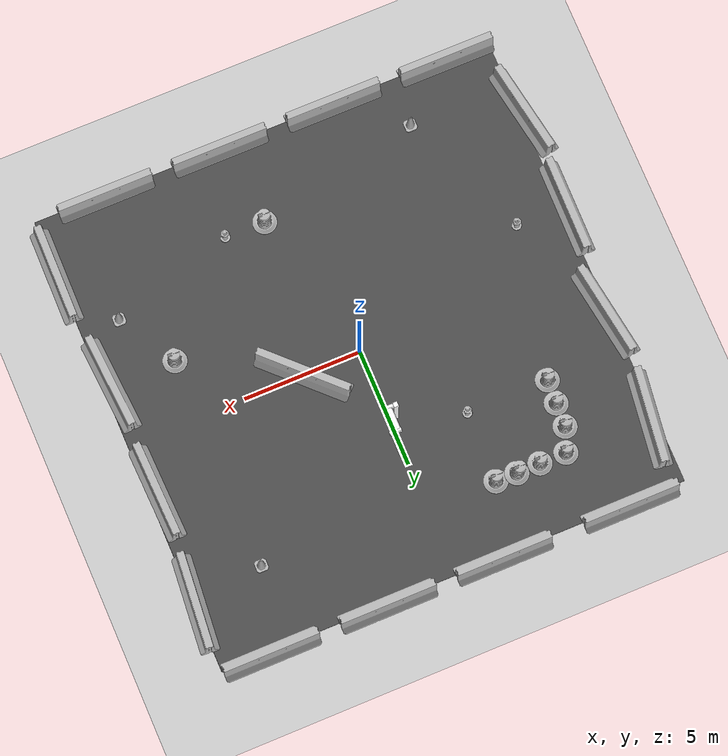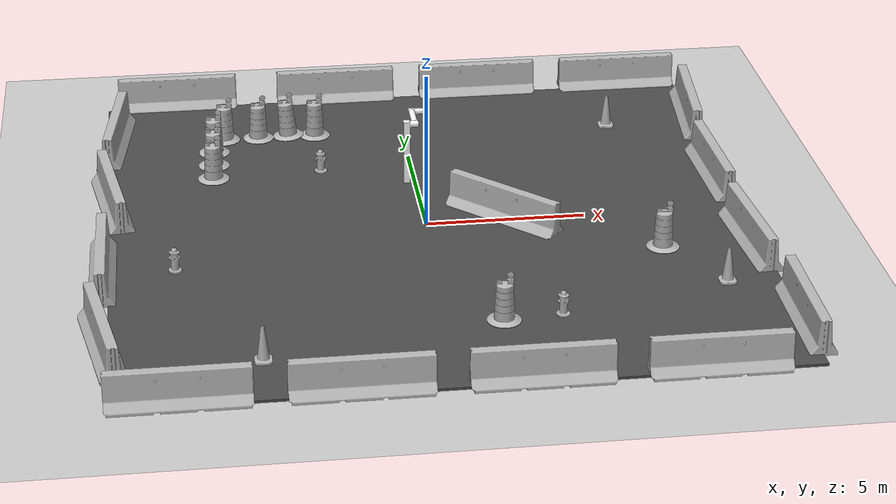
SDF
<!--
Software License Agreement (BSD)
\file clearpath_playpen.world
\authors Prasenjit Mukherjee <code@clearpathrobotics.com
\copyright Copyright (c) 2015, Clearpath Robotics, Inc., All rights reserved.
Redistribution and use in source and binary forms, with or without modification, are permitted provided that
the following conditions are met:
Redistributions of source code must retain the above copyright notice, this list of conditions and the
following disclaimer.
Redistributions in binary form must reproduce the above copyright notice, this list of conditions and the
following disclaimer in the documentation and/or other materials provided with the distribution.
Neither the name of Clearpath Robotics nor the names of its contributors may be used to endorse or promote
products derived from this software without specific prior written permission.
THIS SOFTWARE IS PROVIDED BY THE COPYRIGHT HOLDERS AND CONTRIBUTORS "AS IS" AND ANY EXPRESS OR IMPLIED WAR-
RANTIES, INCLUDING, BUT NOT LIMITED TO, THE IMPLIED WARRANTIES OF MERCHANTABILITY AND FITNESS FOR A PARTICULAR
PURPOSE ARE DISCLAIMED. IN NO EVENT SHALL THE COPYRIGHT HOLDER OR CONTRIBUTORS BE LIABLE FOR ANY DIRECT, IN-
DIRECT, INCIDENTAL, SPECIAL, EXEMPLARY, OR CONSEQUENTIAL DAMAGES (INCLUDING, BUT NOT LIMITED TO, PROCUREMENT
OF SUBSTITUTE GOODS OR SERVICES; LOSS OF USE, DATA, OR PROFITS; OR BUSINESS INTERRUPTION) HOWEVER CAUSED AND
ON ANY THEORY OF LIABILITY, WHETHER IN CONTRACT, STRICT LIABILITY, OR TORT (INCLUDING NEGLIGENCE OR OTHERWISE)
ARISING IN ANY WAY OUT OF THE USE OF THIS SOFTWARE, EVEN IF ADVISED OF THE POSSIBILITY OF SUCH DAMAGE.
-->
<sdf version="1.4">
 <world name="default">
  <light name="sun" type="directional">
   <pose>0 0 10 0 -0 0</pose>
   <diffuse>0.8 0.8 0.8 1</diffuse>
   <specular>0.2 0.2 0.2 1</specular>
   <attenuation>
    <range>1000</range>
    <constant>0.9</constant>
    <linear>0.01</linear>
    <quadratic>0.001</quadratic>
   </attenuation>
   <direction>-0.5 0.1 -0.9</direction>
  </light>
  <model name="ground_plane">
   <static>1</static>
   <link name="link">
    <collision name="collision">
     <geometry><plane><normal>0 0 1</normal><size>100 100</size></plane></geometry>
     <surface><friction><ode><mu>100</mu><mu2>50</mu2></ode></friction></surface>
    </collision>
    <visual name="visual">
     <cast_shadows>0</cast_shadows>
     <geometry><plane><normal>0 0 1</normal><size>100 100</size></plane></geometry>
     <material>
      <script><uri>file://media/materials/scripts/gazebo.material</uri><name>Gazebo/Grey</name></script>
     </material>
    </visual>
    <velocity_decay><linear>0</linear><angular>0</angular></velocity_decay>
   </link>
  </model>
  <physics type="ode">
   <max_step_size>0.01</max_step_size>
   <real_time_factor>1</real_time_factor>
   <real_time_update_rate>100</real_time_update_rate>
   <gravity>0 0 -9.8</gravity>
  </physics>
  <scene><ambient>0.4 0.4 0.4 1</ambient><background>0.7 0.7 0.7 1</background><shadows>1</shadows></scene>
  <model name="jersey_barrier">
   <static>1</static>
   <link name="link">
    <visual name="visual">
     <geometry><mesh><uri>model://jersey_barrier/meshes/jersey_barrier.dae</uri></mesh></geometry>
    </visual>
    <collision name="upright">
     <pose>0 0 0.5715 0 -0 0</pose>
     <geometry><box><size>4.06542 0.3063 1.143</size></box></geometry>
    </collision>
    <collision name="base">
     <pose>0 0 0.032258 0 -0 0</pose>
     <geometry><box><size>4.06542 0.8107 0.064516</size></box></geometry>
    </collision>
    <collision name="base2">
     <pose>0 0 0.1 0 -0 0</pose>
     <geometry><box><size>4.06542 0.65 0.1</size></box></geometry>
    </collision>
    <collision name="base3">
     <pose>0 0 0.2 0 -0 0</pose>
     <geometry><box><size>4.06542 0.5 0.1</size></box></geometry>
    </collision>
    <collision name="left-angle">
     <pose>0 -0.224 0.2401 0.9 -0 0</pose>
     <geometry><box><size>4.06542 0.5 0.064516</size></box></geometry>
    </collision>
    <collision name="right-angle">
     <pose>0 0.224 0.2401 -0.9 0 0</pose>
     <geometry><box><size>4.06542 0.5 0.064516</size></box></geometry>
    </collision>
    <velocity_decay><linear>0</linear><angular>0</angular></velocity_decay>
   </link>
   <pose>-8 -10 0 0 -0 0</pose>
  </model>
  <model name="jersey_barrier_0">
   <static>1</static>
   <link name="link">
    <visual name="visual">
     <geometry><mesh><uri>model://jersey_barrier/meshes/jersey_barrier.dae</uri></mesh></geometry>
    </visual>
    <collision name="upright">
     <pose>0 0 0.5715 0 -0 0</pose>
     <geometry><box><size>4.06542 0.3063 1.143</size></box></geometry>
    </collision>
    <collision name="base">
     <pose>0 0 0.032258 0 -0 0</pose>
     <geometry><box><size>4.06542 0.8107 0.064516</size></box></geometry>
    </collision>
    <collision name="base2">
     <pose>0 0 0.1 0 -0 0</pose>
     <geometry><box><size>4.06542 0.65 0.1</size></box></geometry>
    </collision>
    <collision name="base3">
     <pose>0 0 0.2 0 -0 0</pose>
     <geometry><box><size>4.06542 0.5 0.1</size></box></geometry>
    </collision>
    <collision name="left-angle">
     <pose>0 -0.224 0.2401 0.9 -0 0</pose>
     <geometry><box><size>4.06542 0.5 0.064516</size></box></geometry>
    </collision>
    <collision name="right-angle">
     <pose>0 0.224 0.2401 -0.9 0 0</pose>
     <geometry><box><size>4.06542 0.5 0.064516</size></box></geometry>
    </collision>
    <velocity_decay><linear>0</linear><angular>0</angular></velocity_decay>
   </link>
   <pose>-3 -10 0 0 -0 0</pose>
  </model>
  <model name="jersey_barrier_1">
   <static>1</static>
   <link name="link">
    <visual name="visual">
     <geometry><mesh><uri>model://jersey_barrier/meshes/jersey_barrier.dae</uri></mesh></geometry>
    </visual>
    <collision name="upright">
     <pose>0 0 0.5715 0 -0 0</pose>
     <geometry><box><size>4.06542 0.3063 1.143</size></box></geometry>
    </collision>
    <collision name="base">
     <pose>0 0 0.032258 0 -0 0</pose>
     <geometry><box><size>4.06542 0.8107 0.064516</size></box></geometry>
    </collision>
    <collision name="base2">
     <pose>0 0 0.1 0 -0 0</pose>
     <geometry><box><size>4.06542 0.65 0.1</size></box></geometry>
    </collision>
    <collision name="base3">
     <pose>0 0 0.2 0 -0 0</pose>
     <geometry><box><size>4.06542 0.5 0.1</size></box></geometry>
    </collision>
    <collision name="left-angle">
     <pose>0 -0.224 0.2401 0.9 -0 0</pose>
     <geometry><box><size>4.06542 0.5 0.064516</size></box></geometry>
    </collision>
    <collision name="right-angle">
     <pose>0 0.224 0.2401 -0.9 0 0</pose>
     <geometry><box><size>4.06542 0.5 0.064516</size></box></geometry>
    </collision>
    <velocity_decay><linear>0</linear><angular>0</angular></velocity_decay>
   </link>
   <pose>2 -10 0 0 -0 0</pose>
  </model>
  <model name="jersey_barrier_2">
   <static>1</static>
   <link name="link">
    <visual name="visual">
     <geometry><mesh><uri>model://jersey_barrier/meshes/jersey_barrier.dae</uri></mesh></geometry>
    </visual>
    <collision name="upright">
     <pose>0 0 0.5715 0 -0 0</pose>
     <geometry><box><size>4.06542 0.3063 1.143</size></box></geometry>
    </collision>
    <collision name="base">
     <pose>0 0 0.032258 0 -0 0</pose>
     <geometry><box><size>4.06542 0.8107 0.064516</size></box></geometry>
    </collision>
    <collision name="base2">
     <pose>0 0 0.1 0 -0 0</pose>
     <geometry><box><size>4.06542 0.65 0.1</size></box></geometry>
    </collision>
    <collision name="base3">
     <pose>0 0 0.2 0 -0 0</pose>
     <geometry><box><size>4.06542 0.5 0.1</size></box></geometry>
    </collision>
    <collision name="left-angle">
     <pose>0 -0.224 0.2401 0.9 -0 0</pose>
     <geometry><box><size>4.06542 0.5 0.064516</size></box></geometry>
    </collision>
    <collision name="right-angle">
     <pose>0 0.224 0.2401 -0.9 0 0</pose>
     <geometry><box><size>4.06542 0.5 0.064516</size></box></geometry>
    </collision>
    <velocity_decay><linear>0</linear><angular>0</angular></velocity_decay>
   </link>
   <pose>7 -10 0 0 -0 0</pose>
  </model>
  <model name="jersey_barrier_3">
   <static>1</static>
   <link name="link">
    <visual name="visual">
     <geometry><mesh><uri>model://jersey_barrier/meshes/jersey_barrier.dae</uri></mesh></geometry>
    </visual>
    <collision name="upright">
     <pose>0 0 0.5715 0 -0 0</pose>
     <geometry><box><size>4.06542 0.3063 1.143</size></box></geometry>
    </collision>
    <collision name="base">
     <pose>0 0 0.032258 0 -0 0</pose>
     <geometry><box><size>4.06542 0.8107 0.064516</size></box></geometry>
    </collision>
    <collision name="base2">
     <pose>0 0 0.1 0 -0 0</pose>
     <geometry><box><size>4.06542 0.65 0.1</size></box></geometry>
    </collision>
    <collision name="base3">
     <pose>0 0 0.2 0 -0 0</pose>
     <geometry><box><size>4.06542 0.5 0.1</size></box></geometry>
    </collision>
    <collision name="left-angle">
     <pose>0 -0.224 0.2401 0.9 -0 0</pose>
     <geometry><box><size>4.06542 0.5 0.064516</size></box></geometry>
    </collision>
    <collision name="right-angle">
     <pose>0 0.224 0.2401 -0.9 0 0</pose>
     <geometry><box><size>4.06542 0.5 0.064516</size></box></geometry>
    </collision>
    <velocity_decay><linear>0</linear><angular>0</angular></velocity_decay>
   </link>
   <pose>-7.50675 10 0 0 -0 0</pose>
  </model>
  <model name="jersey_barrier_4">
   <static>1</static>
   <link name="link">
    <visual name="visual">
     <geometry><mesh><uri>model://jersey_barrier/meshes/jersey_barrier.dae</uri></mesh></geometry>
    </visual>
    <collision name="upright">
     <pose>0 0 0.5715 0 -0 0</pose>
     <geometry><box><size>4.06542 0.3063 1.143</size></box></geometry>
    </collision>
    <collision name="base">
     <pose>0 0 0.032258 0 -0 0</pose>
     <geometry><box><size>4.06542 0.8107 0.064516</size></box></geometry>
    </collision>
    <collision name="base2">
     <pose>0 0 0.1 0 -0 0</pose>
     <geometry><box><size>4.06542 0.65 0.1</size></box></geometry>
    </collision>
    <collision name="base3">
     <pose>0 0 0.2 0 -0 0</pose>
     <geometry><box><size>4.06542 0.5 0.1</size></box></geometry>
    </collision>
    <collision name="left-angle">
     <pose>0 -0.224 0.2401 0.9 -0 0</pose>
     <geometry><box><size>4.06542 0.5 0.064516</size></box></geometry>
    </collision>
    <collision name="right-angle">
     <pose>0 0.224 0.2401 -0.9 0 0</pose>
     <geometry><box><size>4.06542 0.5 0.064516</size></box></geometry>
    </collision>
    <velocity_decay><linear>0</linear><angular>0</angular></velocity_decay>
   </link>
   <pose>-2 10 0 0 -0 0</pose>
  </model>
  <model name="jersey_barrier_5">
   <static>1</static>
   <link name="link">
    <visual name="visual">
     <geometry><mesh><uri>model://jersey_barrier/meshes/jersey_barrier.dae</uri></mesh></geometry>
    </visual>
    <collision name="upright">
     <pose>0 0 0.5715 0 -0 0</pose>
     <geometry><box><size>4.06542 0.3063 1.143</size></box></geometry>
    </collision>
    <collision name="base">
     <pose>0 0 0.032258 0 -0 0</pose>
     <geometry><box><size>4.06542 0.8107 0.064516</size></box></geometry>
    </collision>
    <collision name="base2">
     <pose>0 0 0.1 0 -0 0</pose>
     <geometry><box><size>4.06542 0.65 0.1</size></box></geometry>
    </collision>
    <collision name="base3">
     <pose>0 0 0.2 0 -0 0</pose>
     <geometry><box><size>4.06542 0.5 0.1</size></box></geometry>
    </collision>
    <collision name="left-angle">
     <pose>0 -0.224 0.2401 0.9 -0 0</pose>
     <geometry><box><size>4.06542 0.5 0.064516</size></box></geometry>
    </collision>
    <collision name="right-angle">
     <pose>0 0.224 0.2401 -0.9 0 0</pose>
     <geometry><box><size>4.06542 0.5 0.064516</size></box></geometry>
    </collision>
    <velocity_decay><linear>0</linear><angular>0</angular></velocity_decay>
   </link>
   <pose>3 10 0 0 -0 0</pose>
  </model>
  <model name="jersey_barrier_6">
   <static>1</static>
   <link name="link">
    <visual name="visual">
     <geometry><mesh><uri>model://jersey_barrier/meshes/jersey_barrier.dae</uri></mesh></geometry>
    </visual>
    <collision name="upright">
     <pose>0 0 0.5715 0 -0 0</pose>
     <geometry><box><size>4.06542 0.3063 1.143</size></box></geometry>
    </collision>
    <collision name="base">
     <pose>0 0 0.032258 0 -0 0</pose>
     <geometry><box><size>4.06542 0.8107 0.064516</size></box></geometry>
    </collision>
    <collision name="base2">
     <pose>0 0 0.1 0 -0 0</pose>
     <geometry><box><size>4.06542 0.65 0.1</size></box></geometry>
    </collision>
    <collision name="base3">
     <pose>0 0 0.2 0 -0 0</pose>
     <geometry><box><size>4.06542 0.5 0.1</size></box></geometry>
    </collision>
    <collision name="left-angle">
     <pose>0 -0.224 0.2401 0.9 -0 0</pose>
     <geometry><box><size>4.06542 0.5 0.064516</size></box></geometry>
    </collision>
    <collision name="right-angle">
     <pose>0 0.224 0.2401 -0.9 0 0</pose>
     <geometry><box><size>4.06542 0.5 0.064516</size></box></geometry>
    </collision>
    <velocity_decay><linear>0</linear><angular>0</angular></velocity_decay>
   </link>
   <pose>8 10 0 0 -0 0</pose>
  </model>
  <model name="jersey_barrier_7">
   <static>1</static>
   <link name="link">
    <visual name="visual">
     <geometry><mesh><uri>model://jersey_barrier/meshes/jersey_barrier.dae</uri></mesh></geometry>
    </visual>
    <collision name="upright">
     <pose>0 0 0.5715 0 -0 0</pose>
     <geometry><box><size>4.06542 0.3063 1.143</size></box></geometry>
    </collision>
    <collision name="base">
     <pose>0 0 0.032258 0 -0 0</pose>
     <geometry><box><size>4.06542 0.8107 0.064516</size></box></geometry>
    </collision>
    <collision name="base2">
     <pose>0 0 0.1 0 -0 0</pose>
     <geometry><box><size>4.06542 0.65 0.1</size></box></geometry>
    </collision>
    <collision name="base3">
     <pose>0 0 0.2 0 -0 0</pose>
     <geometry><box><size>4.06542 0.5 0.1</size></box></geometry>
    </collision>
    <collision name="left-angle">
     <pose>0 -0.224 0.2401 0.9 -0 0</pose>
     <geometry><box><size>4.06542 0.5 0.064516</size></box></geometry>
    </collision>
    <collision name="right-angle">
     <pose>0 0.224 0.2401 -0.9 0 0</pose>
     <geometry><box><size>4.06542 0.5 0.064516</size></box></geometry>
    </collision>
    <velocity_decay><linear>0</linear><angular>0</angular></velocity_decay>
   </link>
   <pose>9.74902 -2.57759 0 0 -0 1.64</pose>
  </model>
  <model name="jersey_barrier_8">
   <static>1</static>
   <link name="link">
    <visual name="visual">
     <geometry><mesh><uri>model://jersey_barrier/meshes/jersey_barrier.dae</uri></mesh></geometry>
    </visual>
    <collision name="upright">
     <pose>0 0 0.5715 0 -0 0</pose>
     <geometry><box><size>4.06542 0.3063 1.143</size></box></geometry>
    </collision>
    <collision name="base">
     <pose>0 0 0.032258 0 -0 0</pose>
     <geometry><box><size>4.06542 0.8107 0.064516</size></box></geometry>
    </collision>
    <collision name="base2">
     <pose>0 0 0.1 0 -0 0</pose>
     <geometry><box><size>4.06542 0.65 0.1</size></box></geometry>
    </collision>
    <collision name="base3">
     <pose>0 0 0.2 0 -0 0</pose>
     <geometry><box><size>4.06542 0.5 0.1</size></box></geometry>
    </collision>
    <collision name="left-angle">
     <pose>0 -0.224 0.2401 0.9 -0 0</pose>
     <geometry><box><size>4.06542 0.5 0.064516</size></box></geometry>
    </collision>
    <collision name="right-angle">
     <pose>0 0.224 0.2401 -0.9 0 0</pose>
     <geometry><box><size>4.06542 0.5 0.064516</size></box></geometry>
    </collision>
    <velocity_decay><linear>0</linear><angular>0</angular></velocity_decay>
   </link>
   <pose>9.70141 2.24369 0 0 -0 1.6</pose>
  </model>
  <model name="jersey_barrier_9">
   <static>1</static>
   <link name="link">
    <visual name="visual">
     <geometry><mesh><uri>model://jersey_barrier/meshes/jersey_barrier.dae</uri></mesh></geometry>
    </visual>
    <collision name="upright">
     <pose>0 0 0.5715 0 -0 0</pose>
     <geometry><box><size>4.06542 0.3063 1.143</size></box></geometry>
    </collision>
    <collision name="base">
     <pose>0 0 0.032258 0 -0 0</pose>
     <geometry><box><size>4.06542 0.8107 0.064516</size></box></geometry>
    </collision>
    <collision name="base2">
     <pose>0 0 0.1 0 -0 0</pose>
     <geometry><box><size>4.06542 0.65 0.1</size></box></geometry>
    </collision>
    <collision name="base3">
     <pose>0 0 0.2 0 -0 0</pose>
     <geometry><box><size>4.06542 0.5 0.1</size></box></geometry>
    </collision>
    <collision name="left-angle">
     <pose>0 -0.224 0.2401 0.9 -0 0</pose>
     <geometry><box><size>4.06542 0.5 0.064516</size></box></geometry>
    </collision>
    <collision name="right-angle">
     <pose>0 0.224 0.2401 -0.9 0 0</pose>
     <geometry><box><size>4.06542 0.5 0.064516</size></box></geometry>
    </collision>
    <velocity_decay><linear>0</linear><angular>0</angular></velocity_decay>
   </link>
   <pose>-10.0607 -6.69856 0 0 0 -1.4</pose>
  </model>
  <model name="jersey_barrier_10">
   <static>1</static>
   <link name="link">
    <visual name="visual">
     <geometry><mesh><uri>model://jersey_barrier/meshes/jersey_barrier.dae</uri></mesh></geometry>
    </visual>
    <collision name="upright">
     <pose>0 0 0.5715 0 -0 0</pose>
     <geometry><box><size>4.06542 0.3063 1.143</size></box></geometry>
    </collision>
    <collision name="base">
     <pose>0 0 0.032258 0 -0 0</pose>
     <geometry><box><size>4.06542 0.8107 0.064516</size></box></geometry>
    </collision>
    <collision name="base2">
     <pose>0 0 0.1 0 -0 0</pose>
     <geometry><box><size>4.06542 0.65 0.1</size></box></geometry>
    </collision>
    <collision name="base3">
     <pose>0 0 0.2 0 -0 0</pose>
     <geometry><box><size>4.06542 0.5 0.1</size></box></geometry>
    </collision>
    <collision name="left-angle">
     <pose>0 -0.224 0.2401 0.9 -0 0</pose>
     <geometry><box><size>4.06542 0.5 0.064516</size></box></geometry>
    </collision>
    <collision name="right-angle">
     <pose>0 0.224 0.2401 -0.9 0 0</pose>
     <geometry><box><size>4.06542 0.5 0.064516</size></box></geometry>
    </collision>
    <velocity_decay><linear>0</linear><angular>0</angular></velocity_decay>
   </link>
   <pose>-10.0774 -2.27159 0 0 -0 1.56</pose>
  </model>
  <model name="jersey_barrier_11">
   <static>1</static>
   <link name="link">
    <visual name="visual">
     <geometry><mesh><uri>model://jersey_barrier/meshes/jersey_barrier.dae</uri></mesh></geometry>
    </visual>
    <collision name="upright">
     <pose>0 0 0.5715 0 -0 0</pose>
     <geometry><box><size>4.06542 0.3063 1.143</size></box></geometry>
    </collision>
    <collision name="base">
     <pose>0 0 0.032258 0 -0 0</pose>
     <geometry><box><size>4.06542 0.8107 0.064516</size></box></geometry>
    </collision>
    <collision name="base2">
     <pose>0 0 0.1 0 -0 0</pose>
     <geometry><box><size>4.06542 0.65 0.1</size></box></geometry>
    </collision>
    <collision name="base3">
     <pose>0 0 0.2 0 -0 0</pose>
     <geometry><box><size>4.06542 0.5 0.1</size></box></geometry>
    </collision>
    <collision name="left-angle">
     <pose>0 -0.224 0.2401 0.9 -0 0</pose>
     <geometry><box><size>4.06542 0.5 0.064516</size></box></geometry>
    </collision>
    <collision name="right-angle">
     <pose>0 0.224 0.2401 -0.9 0 0</pose>
     <geometry><box><size>4.06542 0.5 0.064516</size></box></geometry>
    </collision>
    <velocity_decay><linear>0</linear><angular>0</angular></velocity_decay>
   </link>
   <pose>-9.77013 2.34791 0 0 -0 1.72</pose>
  </model>
  <model name="jersey_barrier_12">
   <static>1</static>
   <link name="link">
    <visual name="visual">
     <geometry><mesh><uri>model://jersey_barrier/meshes/jersey_barrier.dae</uri></mesh></geometry>
    </visual>
    <collision name="upright">
     <pose>0 0 0.5715 0 -0 0</pose>
     <geometry><box><size>4.06542 0.3063 1.143</size></box></geometry>
    </collision>
    <collision name="base">
     <pose>0 0 0.032258 0 -0 0</pose>
     <geometry><box><size>4.06542 0.8107 0.064516</size></box></geometry>
    </collision>
    <collision name="base2">
     <pose>0 0 0.1 0 -0 0</pose>
     <geometry><box><size>4.06542 0.65 0.1</size></box></geometry>
    </collision>
    <collision name="base3">
     <pose>0 0 0.2 0 -0 0</pose>
     <geometry><box><size>4.06542 0.5 0.1</size></box></geometry>
    </collision>
    <collision name="left-angle">
     <pose>0 -0.224 0.2401 0.9 -0 0</pose>
     <geometry><box><size>4.06542 0.5 0.064516</size></box></geometry>
    </collision>
    <collision name="right-angle">
     <pose>0 0.224 0.2401 -0.9 0 0</pose>
     <geometry><box><size>4.06542 0.5 0.064516</size></box></geometry>
    </collision>
    <velocity_decay><linear>0</linear><angular>0</angular></velocity_decay>
   </link>
   <pose>10.0879 -7.62159 0 0 -0 1.56</pose>
  </model>
  <model name="jersey_barrier_13">
   <static>1</static>
   <link name="link">
    <visual name="visual">
     <geometry><mesh><uri>model://jersey_barrier/meshes/jersey_barrier.dae</uri></mesh></geometry>
    </visual>
    <collision name="upright">
     <pose>0 0 0.5715 0 -0 0</pose>
     <geometry><box><size>4.06542 0.3063 1.143</size></box></geometry>
    </collision>
    <collision name="base">
     <pose>0 0 0.032258 0 -0 0</pose>
     <geometry><box><size>4.06542 0.8107 0.064516</size></box></geometry>
    </collision>
    <collision name="base2">
     <pose>0 0 0.1 0 -0 0</pose>
     <geometry><box><size>4.06542 0.65 0.1</size></box></geometry>
    </collision>
    <collision name="base3">
     <pose>0 0 0.2 0 -0 0</pose>
     <geometry><box><size>4.06542 0.5 0.1</size></box></geometry>
    </collision>
    <collision name="left-angle">
     <pose>0 -0.224 0.2401 0.9 -0 0</pose>
     <geometry><box><size>4.06542 0.5 0.064516</size></box></geometry>
    </collision>
    <collision name="right-angle">
     <pose>0 0.224 0.2401 -0.9 0 0</pose>
     <geometry><box><size>4.06542 0.5 0.064516</size></box></geometry>
    </collision>
    <velocity_decay><linear>0</linear><angular>0</angular></velocity_decay>
   </link>
   <pose>10 7 0 0 -0 1.48</pose>
  </model>
  <model name="jersey_barrier_14">
   <static>1</static>
   <link name="link">
    <visual name="visual">
     <geometry><mesh><uri>model://jersey_barrier/meshes/jersey_barrier.dae</uri></mesh></geometry>
    </visual>
    <collision name="upright">
     <pose>0 0 0.5715 0 -0 0</pose>
     <geometry><box><size>4.06542 0.3063 1.143</size></box></geometry>
    </collision>
    <collision name="base">
     <pose>0 0 0.032258 0 -0 0</pose>
     <geometry><box><size>4.06542 0.8107 0.064516</size></box></geometry>
    </collision>
    <collision name="base2">
     <pose>0 0 0.1 0 -0 0</pose>
     <geometry><box><size>4.06542 0.65 0.1</size></box></geometry>
    </collision>
    <collision name="base3">
     <pose>0 0 0.2 0 -0 0</pose>
     <geometry><box><size>4.06542 0.5 0.1</size></box></geometry>
    </collision>
    <collision name="left-angle">
     <pose>0 -0.224 0.2401 0.9 -0 0</pose>
     <geometry><box><size>4.06542 0.5 0.064516</size></box></geometry>
    </collision>
    <collision name="right-angle">
     <pose>0 0.224 0.2401 -0.9 0 0</pose>
     <geometry><box><size>4.06542 0.5 0.064516</size></box></geometry>
    </collision>
    <velocity_decay><linear>0</linear><angular>0</angular></velocity_decay>
   </link>
   <pose>-9.64482 7.05946 0 0 -0 1.44</pose>
  </model>
  <model name="fire_hydrant">
   <static>1</static>
   <link name="link">
    <collision name="collision">
     <geometry><mesh><uri>model://fire_hydrant/meshes/fire_hydrant.dae</uri></mesh></geometry>
    </collision>
    <visual name="visual">
     <geometry><mesh><uri>model://fire_hydrant/meshes/fire_hydrant.dae</uri></mesh></geometry>
    </visual>
    <velocity_decay><linear>0</linear><angular>0</angular></velocity_decay>
   </link>
   <pose>3.18024 -6.51118 0 0 -0 0</pose>
  </model>
  <model name="fire_hydrant_0">
   <static>1</static>
   <link name="link">
    <collision name="collision">
     <geometry><mesh><uri>model://fire_hydrant/meshes/fire_hydrant.dae</uri></mesh></geometry>
    </collision>
    <visual name="visual">
     <geometry><mesh><uri>model://fire_hydrant/meshes/fire_hydrant.dae</uri></mesh></geometry>
    </visual>
    <velocity_decay><linear>0</linear><angular>0</angular></velocity_decay>
   </link>
   <pose>-3 4 0 0 -0 0</pose>
  </model>
  <model name="fire_hydrant_1">
   <static>1</static>
   <link name="link">
    <collision name="collision">
     <geometry><mesh><uri>model://fire_hydrant/meshes/fire_hydrant.dae</uri></mesh></geometry>
    </collision>
    <visual name="visual">
     <geometry><mesh><uri>model://fire_hydrant/meshes/fire_hydrant.dae</uri></mesh></geometry>
    </visual>
    <velocity_decay><linear>0</linear><angular>0</angular></velocity_decay>
   </link>
   <pose>-7.90686 -2.41363 0 0 -0 0</pose>
  </model>
  <model name="jersey_barrier_15">
   <static>1</static>
   <link name="link">
    <visual name="visual">
     <geometry><mesh><uri>model://jersey_barrier/meshes/jersey_barrier.dae</uri></mesh></geometry>
    </visual>
    <collision name="upright">
     <pose>0 0 0.5715 0 -0 0</pose>
     <geometry><box><size>4.06542 0.3063 1.143</size></box></geometry>
    </collision>
    <collision name="base">
     <pose>0 0 0.032258 0 -0 0</pose>
     <geometry><box><size>4.06542 0.8107 0.064516</size></box></geometry>
    </collision>
    <collision name="base2">
     <pose>0 0 0.1 0 -0 0</pose>
     <geometry><box><size>4.06542 0.65 0.1</size></box></geometry>
    </collision>
    <collision name="base3">
     <pose>0 0 0.2 0 -0 0</pose>
     <geometry><box><size>4.06542 0.5 0.1</size></box></geometry>
    </collision>
    <collision name="left-angle">
     <pose>0 -0.224 0.2401 0.9 -0 0</pose>
     <geometry><box><size>4.06542 0.5 0.064516</size></box></geometry>
    </collision>
    <collision name="right-angle">
     <pose>0 0.224 0.2401 -0.9 0 0</pose>
     <geometry><box><size>4.06542 0.5 0.064516</size></box></geometry>
    </collision>
    <velocity_decay><linear>0</linear><angular>0</angular></velocity_decay>
   </link>
   <pose>2.45495 0 0 0 -0 2.36</pose>
  </model>
  <model name="Construction Cone">
   <link name="link">
    <collision name="collision">
     <geometry>
      <mesh><scale>10 10 10</scale><uri>model://construction_cone/meshes/construction_cone.dae</uri></mesh>
     </geometry>
    </collision>
    <visual name="visual">
     <geometry>
      <mesh><scale>10 10 10</scale><uri>model://construction_cone/meshes/construction_cone.dae</uri></mesh>
     </geometry>
    </visual>
    <velocity_decay><linear>0</linear><angular>0</angular></velocity_decay>
    <inertial>
     <inertia><ixx>1</ixx><ixy>0</ixy><ixz>0</ixz><iyy>1</iyy><iyz>0</iyz><izz>1</izz></inertia>
     <mass>1</mass>
    </inertial>
   </link>
   <pose>-5.59121 -8 0.05 0 -1e-06 0</pose>
   <static>0</static>
  </model>
  <model name="Construction Barrel">
   <link name="link">
    <inertial>
     <pose>0 0 0.4 0 -0 0</pose>
     <mass>500</mass>
     <inertia><ixx>51.2096</ixx><iyy>51.2096</iyy><izz>25</izz><ixy>0</ixy><ixz>0</ixz><iyz>0</iyz></inertia>
    </inertial>
    <collision name="collision">
     <geometry><mesh><uri>model://construction_barrel/meshes/construction_barrel.dae</uri></mesh></geometry>
    </collision>
    <visual name="visual">
     <geometry><mesh><uri>model://construction_barrel/meshes/construction_barrel.dae</uri></mesh></geometry>
    </visual>
    <velocity_decay><linear>0</linear><angular>0</angular></velocity_decay>
   </link>
   <pose>7.00006 -2.54635 0.049999 4e-06 -0 0.000401</pose>
   <static>0</static>
  </model>
  <model name="Construction Cone_0">
   <link name="link">
    <collision name="collision">
     <geometry>
      <mesh><scale>10 10 10</scale><uri>model://construction_cone/meshes/construction_cone.dae</uri></mesh>
     </geometry>
    </collision>
    <visual name="visual">
     <geometry>
      <mesh><scale>10 10 10</scale><uri>model://construction_cone/meshes/construction_cone.dae</uri></mesh>
     </geometry>
    </visual>
    <velocity_decay><linear>0</linear><angular>0</angular></velocity_decay>
    <inertial>
     <inertia><ixx>1</ixx><ixy>0</ixy><ixz>0</ixz><iyy>1</iyy><iyz>0</iyz><izz>1</izz></inertia>
     <mass>1</mass>
    </inertial>
   </link>
   <pose>6.99685 6.55732 0.05 -8.27181e-25 1e-06 -0.007012</pose>
   <static>0</static>
  </model>
  <model name="Construction Barrel_0">
   <link name="link">
    <inertial>
     <pose>0 0 0.4 0 -0 0</pose>
     <mass>500</mass>
     <inertia><ixx>51.2096</ixx><iyy>51.2096</iyy><izz>25</izz><ixy>0</ixy><ixz>0</ixz><iyz>0</iyz></inertia>
    </inertial>
    <collision name="collision">
     <geometry><mesh><uri>model://construction_barrel/meshes/construction_barrel.dae</uri></mesh></geometry>
    </collision>
    <visual name="visual">
     <geometry><mesh><uri>model://construction_barrel/meshes/construction_barrel.dae</uri></mesh></geometry>
    </visual>
    <velocity_decay><linear>0</linear><angular>0</angular></velocity_decay>
   </link>
   <pose>1.45178 -6.51128 0.049999 -1e-06 -3e-06 3.8e-05</pose>
   <static>0</static>
  </model>
  <model name="asphalt_plane">
   <static>1</static>
   <link name="link">
    <collision name="collision"><geometry><box><size>20 20 0.1</size></box></geometry></collision>
    <visual name="visual">
     <cast_shadows>0</cast_shadows>
     <geometry><box><size>20 20 0.1</size></box></geometry>
     <material>
      <script>
       <uri>model://asphalt_plane/materials/scripts</uri>
       <uri>model://asphalt_plane/materials/textures</uri>
       <name>vrc/asphalt</name>
      </script>
     </material>
    </visual>
    <velocity_decay><linear>0</linear><angular>0</angular></velocity_decay>
   </link>
   <pose>0.076733 -0.110379 0 0 -0 0</pose>
  </model>
  <model name="Construction Barrel_1">
   <link name="link">
    <inertial>
     <pose>0 0 0.4 0 -0 0</pose>
     <mass>500</mass>
     <inertia><ixx>51.2096</ixx><iyy>51.2096</iyy><izz>25</izz><ixy>0</ixy><ixz>0</ixz><iyz>0</iyz></inertia>
    </inertial>
    <collision name="collision">
     <geometry><mesh><uri>model://construction_barrel/meshes/construction_barrel.dae</uri></mesh></geometry>
    </collision>
    <visual name="visual">
     <geometry><mesh><uri>model://construction_barrel/meshes/construction_barrel.dae</uri></mesh></geometry>
    </visual>
    <velocity_decay><linear>0</linear><angular>0</angular></velocity_decay>
   </link>
   <pose>-6.50482 3.9826 0.049999 4e-06 1e-06 -0.009616</pose>
   <static>0</static>
  </model>
  <model name="Construction Barrel_2">
   <link name="link">
    <inertial>
     <pose>0 0 0.4 0 -0 0</pose>
     <mass>500</mass>
     <inertia><ixx>51.2096</ixx><iyy>51.2096</iyy><izz>25</izz><ixy>0</ixy><ixz>0</ixz><iyz>0</iyz></inertia>
    </inertial>
    <collision name="collision">
     <geometry><mesh><uri>model://construction_barrel/meshes/construction_barrel.dae</uri></mesh></geometry>
    </collision>
    <visual name="visual">
     <geometry><mesh><uri>model://construction_barrel/meshes/construction_barrel.dae</uri></mesh></geometry>
    </visual>
    <velocity_decay><linear>0</linear><angular>0</angular></velocity_decay>
   </link>
   <pose>-6.45065 4.99639 0.049999 -1e-06 -2e-06 0.064981</pose>
   <static>0</static>
  </model>
  <model name="Construction Barrel_3">
   <link name="link">
    <inertial>
     <pose>0 0 0.4 0 -0 0</pose>
     <mass>500</mass>
     <inertia><ixx>51.2096</ixx><iyy>51.2096</iyy><izz>25</izz><ixy>0</ixy><ixz>0</ixz><iyz>0</iyz></inertia>
    </inertial>
    <collision name="collision">
     <geometry><mesh><uri>model://construction_barrel/meshes/construction_barrel.dae</uri></mesh></geometry>
    </collision>
    <visual name="visual">
     <geometry><mesh><uri>model://construction_barrel/meshes/construction_barrel.dae</uri></mesh></geometry>
    </visual>
    <velocity_decay><linear>0</linear><angular>0</angular></velocity_decay>
   </link>
   <pose>-6.40174 6.01109 0.05 -1e-06 -1e-06 -0.120729</pose>
   <static>0</static>
  </model>
  <model name="Construction Barrel_4">
   <link name="link">
    <inertial>
     <pose>0 0 0.4 0 -0 0</pose>
     <mass>500</mass>
     <inertia><ixx>51.2096</ixx><iyy>51.2096</iyy><izz>25</izz><ixy>0</ixy><ixz>0</ixz><iyz>0</iyz></inertia>
    </inertial>
    <collision name="collision">
     <geometry><mesh><uri>model://construction_barrel/meshes/construction_barrel.dae</uri></mesh></geometry>
    </collision>
    <visual name="visual">
     <geometry><mesh><uri>model://construction_barrel/meshes/construction_barrel.dae</uri></mesh></geometry>
    </visual>
    <velocity_decay><linear>0</linear><angular>0</angular></velocity_decay>
   </link>
   <pose>-6.00634 7.00879 0.049999 3e-06 -0 -0.04957</pose>
   <static>0</static>
  </model>
  <model name="Construction Barrel_5">
   <link name="link">
    <inertial>
     <pose>0 0 0.4 0 -0 0</pose>
     <mass>500</mass>
     <inertia><ixx>51.2096</ixx><iyy>51.2096</iyy><izz>25</izz><ixy>0</ixy><ixz>0</ixz><iyz>0</iyz></inertia>
    </inertial>
    <collision name="collision">
     <geometry><mesh><uri>model://construction_barrel/meshes/construction_barrel.dae</uri></mesh></geometry>
    </collision>
    <visual name="visual">
     <geometry><mesh><uri>model://construction_barrel/meshes/construction_barrel.dae</uri></mesh></geometry>
    </visual>
    <velocity_decay><linear>0</linear><angular>0</angular></velocity_decay>
   </link>
   <pose>-4.87565 7.00813 0.049999 -1e-06 -3e-06 0.146162</pose>
   <static>0</static>
  </model>
  <model name="Construction Barrel_6">
   <link name="link">
    <inertial>
     <pose>0 0 0.4 0 -0 0</pose>
     <mass>500</mass>
     <inertia><ixx>51.2096</ixx><iyy>51.2096</iyy><izz>25</izz><ixy>0</ixy><ixz>0</ixz><iyz>0</iyz></inertia>
    </inertial>
    <collision name="collision">
     <geometry><mesh><uri>model://construction_barrel/meshes/construction_barrel.dae</uri></mesh></geometry>
    </collision>
    <visual name="visual">
     <geometry><mesh><uri>model://construction_barrel/meshes/construction_barrel.dae</uri></mesh></geometry>
    </visual>
    <velocity_decay><linear>0</linear><angular>0</angular></velocity_decay>
   </link>
   <pose>-3.85615 7.02809 0.0897 -0.01028 -0.077931 0.017839</pose>
   <static>0</static>
  </model>
  <model name="Construction Barrel_7">
   <link name="link">
    <inertial>
     <pose>0 0 0.4 0 -0 0</pose>
     <mass>500</mass>
     <inertia><ixx>51.2096</ixx><iyy>51.2096</iyy><izz>25</izz><ixy>0</ixy><ixz>0</ixz><iyz>0</iyz></inertia>
    </inertial>
    <collision name="collision">
     <geometry><mesh><uri>model://construction_barrel/meshes/construction_barrel.dae</uri></mesh></geometry>
    </collision>
    <visual name="visual">
     <geometry><mesh><uri>model://construction_barrel/meshes/construction_barrel.dae</uri></mesh></geometry>
    </visual>
    <velocity_decay><linear>0</linear><angular>0</angular></velocity_decay>
   </link>
   <pose>-2.95979 6.99802 0.049998 -3e-06 -7e-06 -0.017994</pose>
   <static>0</static>
  </model>
  <model name="Construction Cone_1">
   <link name="link">
    <collision name="collision">
     <geometry>
      <mesh><scale>10 10 10</scale><uri>model://construction_cone/meshes/construction_cone.dae</uri></mesh>
     </geometry>
    </collision>
    <visual name="visual">
     <geometry>
      <mesh><scale>10 10 10</scale><uri>model://construction_cone/meshes/construction_cone.dae</uri></mesh>
     </geometry>
    </visual>
    <velocity_decay><linear>0</linear><angular>0</angular></velocity_decay>
    <inertial>
     <inertia><ixx>1</ixx><ixy>0</ixy><ixz>0</ixz><iyy>1</iyy><iyz>0</iyz><izz>1</izz></inertia>
     <mass>1</mass>
    </inertial>
   </link>
   <pose>8.42887 -5 0.049999 0 3e-06 0</pose>
   <static>0</static>
  </model>
  <include>
   <uri>model://double_pendulum_with_base</uri>
   <pose>0 3 0 0 0 0</pose>
   <plugin name="pendulum" filename="libpendulum.so"/>
  </include>
 </world>
</sdf>

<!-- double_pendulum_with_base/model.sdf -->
<sdf version="1.5">
  <model name="double_pendulum_with_base">
    <link name="base">
      <inertial>
        <mass>100</mass>
      </inertial>
      <visual name="vis_plate_on_ground">
        <pose>0 0 0.01 0 0 0</pose>
        <geometry>
          <cylinder>
            <radius>0.8</radius>
            <length>0.02</length>
          </cylinder>
        </geometry>
        <material><diffuse>1 1 1 1</diffuse><specular>0.1 0.1 0.1 1</specular></material>
      </visual>
      <visual name="vis_pole">
        <pose>-0.275 0 1.1 0 0 0</pose>
        <geometry>
          <box>
            <size>0.2 0.2 2.2</size>
          </box>
        </geometry>
        <material><diffuse>1 1 1 1</diffuse><specular>0.1 0.1 0.1 1</specular></material>
      </visual>
      <collision name="col_plate_on_ground">
        <pose>0 0 0.01 0 0 0</pose>
        <geometry>
          <cylinder>
            <radius>0.8</radius>
            <length>0.02</length>
          </cylinder>
        </geometry>
      </collision>
      <collision name="col_pole">
        <pose>-0.275 0 1.1 0 0 0</pose>
        <geometry>
          <box>
            <size>0.2 0.2 2.2</size>
          </box>
        </geometry>
      </collision>
    </link>
    <!-- upper link, length 1, IC -90 degrees -->
    <link name="upper_link">
      <pose>0 0 2.1 -1.5708 0 0</pose>
      <self_collide>0</self_collide>
      <inertial>
        <pose>0 0 0.5 0 0 0</pose>
      </inertial>
      <visual name="vis_upper_joint">
        <pose>-0.05 0 0 0 1.5708 0</pose>
        <geometry>
          <cylinder>
            <radius>0.1</radius>
            <length>0.3</length>
          </cylinder>
        </geometry>
        <material><diffuse>1 1 1 1</diffuse><specular>0.1 0.1 0.1 1</specular></material>
      </visual>
      <visual name="vis_lower_joint">
        <pose>0 0 1.0 0 1.5708 0</pose>
        <geometry>
          <cylinder>
            <radius>0.1</radius>
            <length>0.2</length>
          </cylinder>
        </geometry>
        <material><diffuse>1 1 1 1</diffuse><specular>0.1 0.1 0.1 1</specular></material>
      </visual>
      <visual name="vis_cylinder">
        <pose>0 0 0.5 0 0 0</pose>
        <geometry>
          <cylinder>
            <radius>0.1</radius>
            <length>0.9</length>
          </cylinder>
        </geometry>
        <material><diffuse>1 1 1 1</diffuse><specular>0.1 0.1 0.1 1</specular></material>
      </visual>
      <collision name="col_upper_joint">
        <pose>-0.05 0 0 0 1.5708 0</pose>
        <geometry>
          <cylinder>
            <radius>0.1</radius>
            <length>0.3</length>
          </cylinder>
        </geometry>
      </collision>
      <collision name="col_lower_joint">
        <pose>0 0 1.0 0 1.5708 0</pose>
        <geometry>
          <cylinder>
            <radius>0.1</radius>
            <length>0.2</length>
          </cylinder>
        </geometry>
      </collision>
      <collision name="col_cylinder">
        <pose>0 0 0.5 0 0 0</pose>
        <geometry>
          <cylinder>
            <radius>0.1</radius>
            <length>0.9</length>
          </cylinder>
        </geometry>
      </collision>
    </link>
    <!-- lower link, length 1, IC ~-120 degrees more -->
    <link name="lower_link">
      <pose>0.25 1.0 2.1 -2 0 0</pose>
      <self_collide>0</self_collide>
      <inertial>
        <pose>0 0 0.5 0 0 0</pose>
      </inertial>
      <visual name="vis_lower_joint">
        <pose>0 0 0 0 1.5708 0</pose>
        <geometry>
          <cylinder>
            <radius>0.08</radius>
            <length>0.3</length>
          </cylinder>
        </geometry>
        <material><diffuse>1 1 1 1</diffuse><specular>0.1 0.1 0.1 1</specular></material>
      </visual>
      <visual name="vis_cylinder">
        <pose>0 0 0.5 0 0 0</pose>
        <geometry>
          <cylinder>
            <radius>0.1</radius>
            <length>0.9</length>
          </cylinder>
        </geometry>
        <material><diffuse>1 1 1 1</diffuse><specular>0.1 0.1 0.1 1</specular></material>
      </visual>
      <collision name="col_lower_joint">
        <pose>0 0 0 0 1.5708 0</pose>
        <geometry>
          <cylinder>
            <radius>0.08</radius>
            <length>0.3</length>
          </cylinder>
        </geometry>
      </collision>
      <collision name="col_cylinder">
        <pose>0 0 0.5 0 0 0</pose>
        <geometry>
          <cylinder>
            <radius>0.1</radius>
            <length>0.9</length>
          </cylinder>
        </geometry>
      </collision>
    </link>
    <!-- pin joint for upper link, at origin of upper link -->
    <joint name="upper_joint" type="revolute">
      <parent>base</parent>
      <child>upper_link</child>
      <axis>
        <xyz>1.0 0 0</xyz>
      </axis>
    </joint>
    <!-- pin joint for lower link, at origin of child link -->
    <joint name="lower_joint" type="revolute">
      <parent>upper_link</parent>
      <child>lower_link</child>
      <axis>
        <xyz>1.0 0 0</xyz>
      </axis>
    </joint>
  </model>
</sdf>
